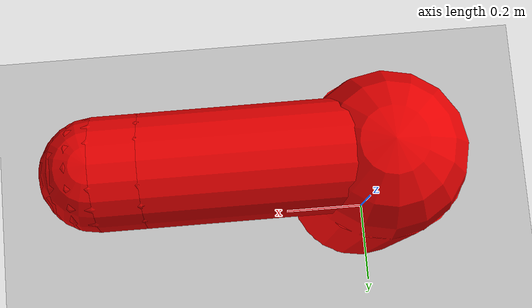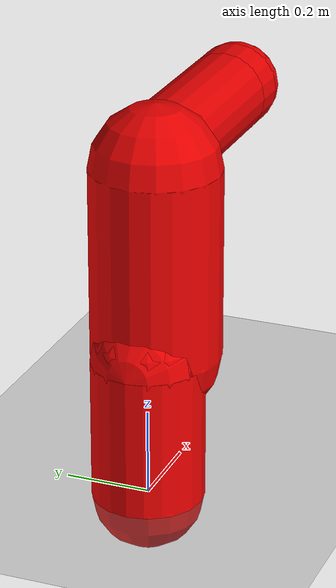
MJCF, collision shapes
<mujoco>
    <size njmax="3000" nconmax="1000"/>
    <compiler meshdir="assets" autolimits="true"/>
    <option gravity="0 0 0" timestep="0.002"/>
    <default>
        <joint limited="false" damping="2000" range="-180 180" />
        <geom condim="6" size="0.032" type="capsule" density="0.01"/>
        <motor ctrllimited="true" ctrlrange="-1.0 1.0" gear="2500"/>
        <site size="0.02" type="sphere" rgba="0 0 1 1"/>
        <default class="lrmate">
          <material specular="0.5" shininess="0.25"/>
          <joint axis="0 0 1"/>
          <general gaintype="fixed" biastype="affine" gainprm="2000" biasprm="0 -2000 -200"/>
          <default class="visual">
            <geom type="mesh" contype="0" conaffinity="0" group="2" />
          </default>
          <default class="collision">
            <geom group="3" material="color_fanuc_red"/>
          </default>
          <site size="0.001" rgba="1 0 0 1" group="4"/>
        </default>
    </default>

    <asset>
      <material class="lrmate" name="color_fanuc_yellow" rgba="0.96 0.76 0.13 1.0"/>
      <material class="lrmate" name="color_fanuc_white" rgba="0.86 0.85 0.81 1.0"/>
      <material class="lrmate" name="color_fanuc_grey" rgba="0.34 0.35 0.36 0.5"/>
      <material class="lrmate" name="color_fanuc_black" rgba="0.15 0.15 0.15 1.0"/>
      <material class="lrmate" name="color_fanuc_red" rgba="0.9 0.0 0.0 0.2"/>

      <mesh file="link_0.stl"/>
      <mesh file="link_1.stl"/>
      <mesh file="link_2.stl"/>
      <mesh file="link_3.stl"/>
      <mesh file="link_4.stl"/>
      <mesh file="link_5.stl"/>
      <mesh file="link_6.stl"/>
    </asset>

    <worldbody>
        <geom name="floor" size="5 5 0.1" type="plane" condim="6"/>
        <camera name="fixedfar" mode="fixed" pos="10 0 5"/>
        <body name="robot" pos="0.0 0.0 0.0">
            <camera name="vision" pos="0 0 .5" xyaxes="0 -1 0 .4 0 1" fovy="90"/>
            <site name="robot" pos="0 0 0" rgba="1 0 0 0"/>

            <body name="link_1" pos="0.0 0.0 0.0">
                <geom class="collision" fromto="0.0 0.0 0.0 0.0 0.0 0.33" size="0.13" name="link_1"/>
                <geom class="visual" material="color_fanuc_black" mesh="link_0" name = "link_1_visual"/>
                <site name="center_link_1" pos="0 0 0.165"/>

                <body name="link_2" pos="0.0 0.0 0.330">
                    <joint type="hinge" axis="0 0 1" name="joint_1"/>
                    <geom class="collision" fromto="0.0 0.0 0.0 0.050 0.0 0.0" size="0.13" name="link_2"/>
                    <geom class="visual" material="color_fanuc_yellow" mesh="link_1" name = "link_2_visual"/>
                    <site name="center_link_2" pos="0.025 0.0 0.0" />

                    <body name="link_3" pos="0.050 0 0">
                        <joint type="hinge" axis="0 1 0" name="joint_2"/>
                        <geom class="collision" fromto="0.0 0.0 0.0 0 0 0.440" size="0.15" name="link_3"/>
                        <geom class="visual" material="color_fanuc_yellow" mesh="link_2" name = "link_3_visual"/>
                        <site name="center_link_3" pos="0.0 0.0 0.220" />

                        <body name="link_4" pos="0 0 0.440">
                            <joint type="hinge" axis="0 -1 0" name="joint_3" />
                            <geom class="collision" fromto="0.0 0.0 0.0 0 0 0.035" size="0.1" name="link_4"/>
                            <geom class="visual" material="color_fanuc_yellow" mesh="link_3" name = "link_4_visual"/>
                            <site name="center_link_4" pos="0.0 0.0 0.0175" />

                            <body name="link_5" pos="0 0 0.035">
                                <joint type="hinge" axis="-1 0 0" name="joint_4"/>
                                <geom class="collision" fromto="0.0 0.0 0.0 0.420 0.0 0.0" size="0.1" name="link_5"/>
                                <geom class="visual" material="color_fanuc_yellow" mesh="link_4" name = "link_5_visual"/>
                                <site name="center_link_5" pos="0.21 0.0 0.0" />

                                <body name="link_6" pos="0.420 0 0">
                                    <joint type="hinge" axis="0 -1 0" name="joint_5"/>
                                    <geom class="collision" fromto="0.0 0.0 0.0 0.080 0 0" size="0.1" name="link_6"/>
                                    <geom class="visual" material="color_fanuc_yellow" mesh="link_5" name = "link_6_visual"/>
                                    <site name="center_link_6" pos="0.04 0.0 0.0" />

                                    <body name="link_7" pos="0.080 0 0">
                                      <joint type="hinge" axis="-1 0 0" name="joint_6"/>
                                        <geom class="collision" pos="0.0 0.0 0.0" type="sphere" size="0.1" name="link_7"/>
                                        <geom class="visual" material="color_fanuc_black" mesh="link_6" name = "link_7_visual"/>
                                        <site name="center_link_7" pos="0.0 0.0 0.0" />
                                    </body>
                                </body>
                            </body>
                        </body>
                    </body>
                </body>
            </body>

        </body>
    </worldbody>

    <sensor>
        <touch site="center_link_7" name="touch_end_effector"/>

        <jointpos joint="joint_1" name="jointpos_joint_1"/>
        <jointpos joint="joint_2" name="jointpos_joint_2"/>
        <jointpos joint="joint_3" name="jointpos_joint_3"/>
        <jointpos joint="joint_4" name="jointpos_joint_4"/>
        <jointpos joint="joint_5" name="jointpos_joint_5"/>
        <jointpos joint="joint_6" name="jointpos_joint_6"/>

        <jointvel joint="joint_1" name="jointvel_joint_1"/>
        <jointvel joint="joint_2" name="jointvel_joint_2"/>
        <jointvel joint="joint_3" name="jointvel_joint_3"/>
        <jointvel joint="joint_4" name="jointvel_joint_4"/>
        <jointvel joint="joint_5" name="jointvel_joint_5"/>
        <jointvel joint="joint_6" name="jointvel_joint_6"/>

        <!-- Used for observation -->

        <accelerometer site="center_link_1" name="accelerometer_link_1"/>
        <velocimeter site="center_link_1" name="velocimeter_link_1"/>
        <gyro site="center_link_1" name="gyro_link_1"/>
        <magnetometer site="center_link_1" name="magnetometer_link_1"/>

        <accelerometer site="center_link_2" name="accelerometer_link_2"/>
        <velocimeter site="center_link_2" name="velocimeter_link_2"/>
        <gyro site="center_link_2" name="gyro_link_2"/>
        <magnetometer site="center_link_2" name="magnetometer_link_2"/>

        <accelerometer site="center_link_3" name="accelerometer_link_3"/>
        <velocimeter site="center_link_3" name="velocimeter_link_3"/>
        <gyro site="center_link_3" name="gyro_link_3"/>
        <magnetometer site="center_link_3" name="magnetometer_link_3"/>

        <accelerometer site="center_link_4" name="accelerometer_link_4"/>
        <velocimeter site="center_link_4" name="velocimeter_link_4"/>
        <gyro site="center_link_4" name="gyro_link_4"/>
        <magnetometer site="center_link_4" name="magnetometer_link_4"/>

        <accelerometer site="center_link_5" name="accelerometer_link_5"/>
        <velocimeter site="center_link_5" name="velocimeter_link_5"/>
        <gyro site="center_link_5" name="gyro_link_5"/>
        <magnetometer site="center_link_5" name="magnetometer_link_5"/>

        <accelerometer site="center_link_6" name="accelerometer_link_6"/>
        <velocimeter site="center_link_6" name="velocimeter_link_6"/>
        <gyro site="center_link_6" name="gyro_link_6"/>
        <magnetometer site="center_link_6" name="magnetometer_link_6"/>

        <accelerometer site="center_link_7" name="accelerometer_link_7"/>
        <velocimeter site="center_link_7" name="velocimeter_link_7"/>
        <gyro site="center_link_7" name="gyro_link_7"/>
        <magnetometer site="center_link_7" name="magnetometer_link_7"/>

        <!-- Used for intrinsic constraints -->
        <subtreecom body="robot" name="subtreecom"/>
        <subtreelinvel body="robot" name="subtreelinvel"/>
        <subtreeangmom body="robot" name="subtreeangmom"/>

    </sensor>
    <actuator>
        <motor name="joint_1" joint="joint_1"/>
        <motor name="joint_2" joint="joint_2"/>
        <motor name="joint_3" joint="joint_3"/>
        <motor name="joint_4" joint="joint_4"/>
        <motor name="joint_5" joint="joint_5"/>
        <motor name="joint_6" joint="joint_6"/>
    </actuator>
</mujoco>
